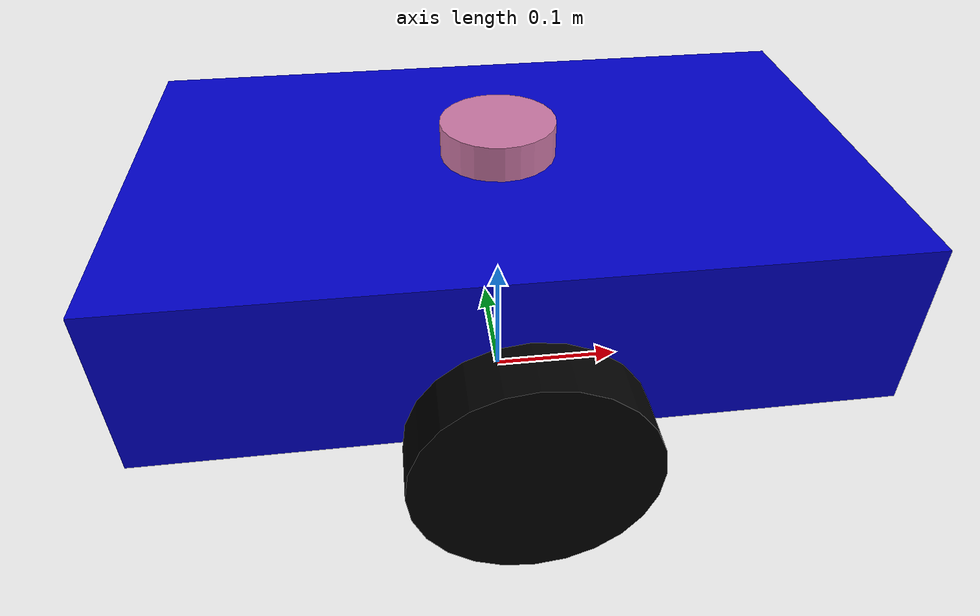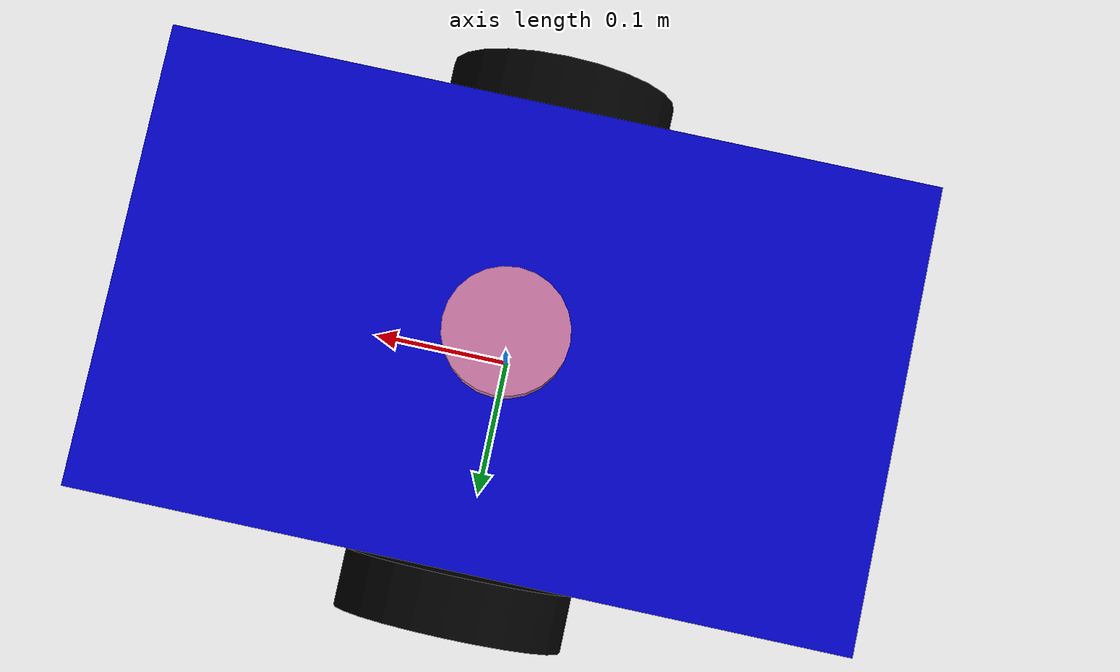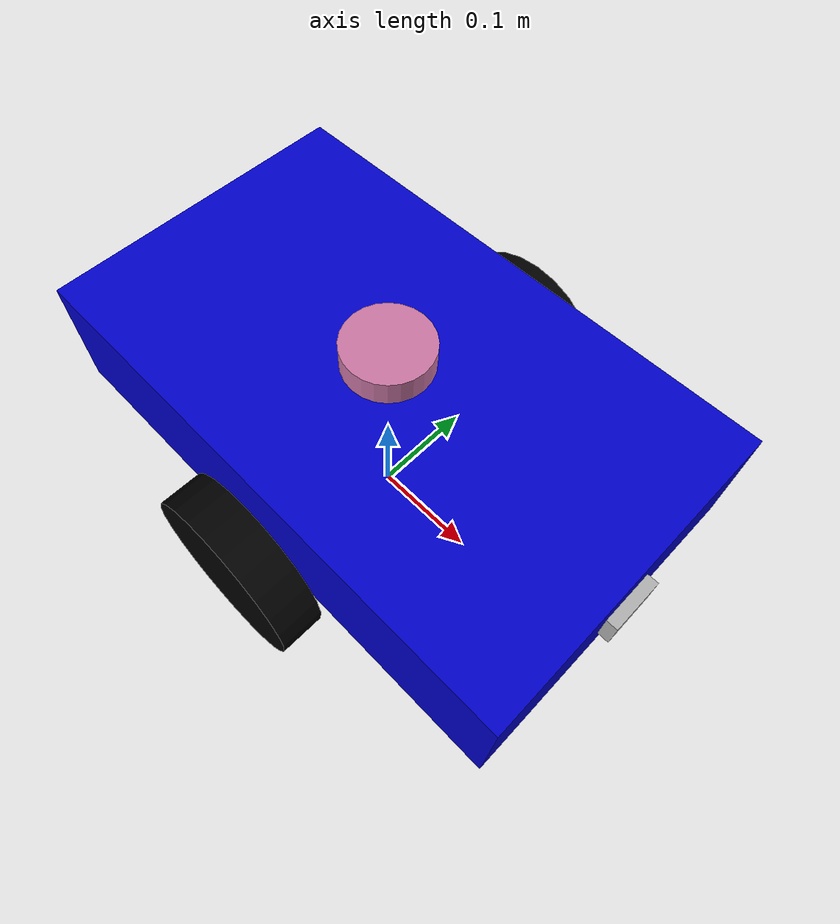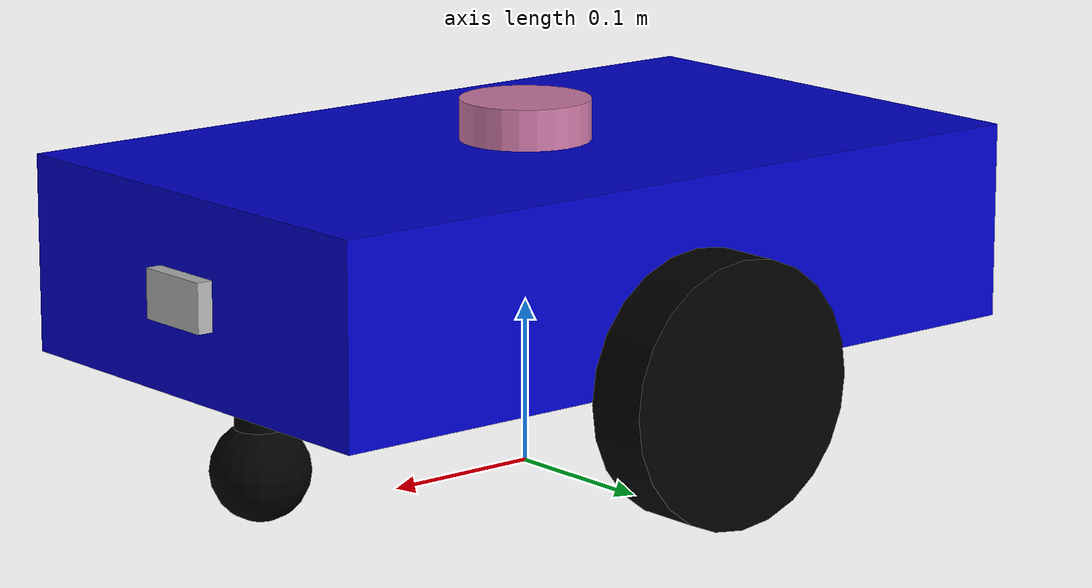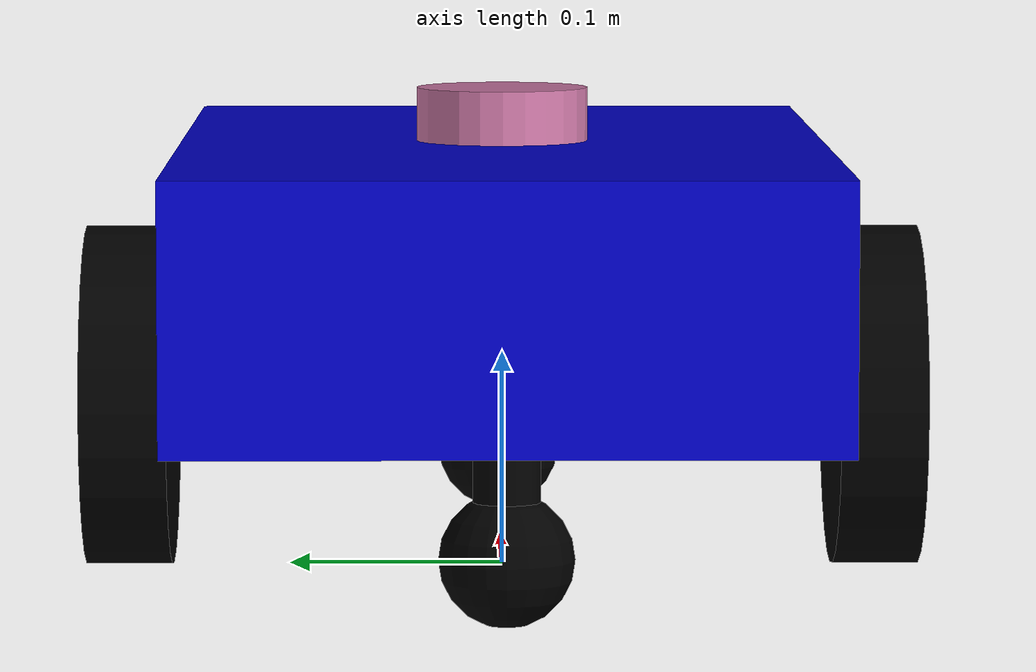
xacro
<?xml version="1.0"?>
<robot xmlns:xacro="http://www.ros.org/wiki/xacro" name="my_robot">

  <xacro:property name="base_length" value="0.50"/>
  <xacro:property name="base_width"  value="0.30"/>
  <xacro:property name="base_height" value="0.12"/>
  <xacro:property name="wheel_radius" value="0.08"/>
  <xacro:property name="wheel_width"  value="0.04"/>
  <xacro:property name="wheel_sep"    value="0.35"/>
  <xacro:property name="caster_radius" value="0.03"/>

  <link name="base_footprint"/>

  <joint name="base_joint" type="fixed">
    <parent link="base_footprint"/>
    <child link="base_link"/>
    <origin xyz="0 0 ${wheel_radius}" rpy="0 0 0"/>
  </joint>

  <link name="base_link">
    <visual>
      <origin xyz="0 0 ${base_height/2}" rpy="0 0 0"/>
      <geometry><box size="${base_length} ${base_width} ${base_height}"/></geometry>
      <material name="blue"><color rgba="0 0 0.8 1"/></material>
    </visual>
    <collision>
      <origin xyz="0 0 ${base_height/2}" rpy="0 0 0"/>
      <geometry><box size="${base_length} ${base_width} ${base_height}"/></geometry>
    </collision>
    <inertial>
      <mass value="5.0"/>
      <inertia ixx="0.04" ixy="0.0" ixz="0.0" iyy="0.1" iyz="0.0" izz="0.1"/>
    </inertial>
  </link>

  <joint name="left_wheel_joint" type="continuous">
    <parent link="base_link"/>
    <child link="left_wheel_link"/>
    <origin xyz="0 ${wheel_sep/2} 0" rpy="-1.5708 0 0"/>
    <axis xyz="0 0 1"/>
  </joint>
  <link name="left_wheel_link">
    <visual><geometry><cylinder radius="${wheel_radius}" length="${wheel_width}"/></geometry><material name="black"><color rgba="0 0 0 1"/></material></visual>
    <collision><geometry><cylinder radius="${wheel_radius}" length="${wheel_width}"/></geometry></collision>
    <inertial><mass value="0.5"/><inertia ixx="0.001" ixy="0" ixz="0" iyy="0.001" iyz="0" izz="0.001"/></inertial>
  </link>

  <joint name="right_wheel_joint" type="continuous">
    <parent link="base_link"/>
    <child link="right_wheel_link"/>
    <origin xyz="0 ${-wheel_sep/2} 0" rpy="-1.5708 0 0"/>
    <axis xyz="0 0 1"/>
  </joint>
  <link name="right_wheel_link">
    <visual><geometry><cylinder radius="${wheel_radius}" length="${wheel_width}"/></geometry><material name="black"/></visual>
    <collision><geometry><cylinder radius="${wheel_radius}" length="${wheel_width}"/></geometry></collision>
    <inertial><mass value="0.5"/><inertia ixx="0.001" ixy="0" ixz="0" iyy="0.001" iyz="0" izz="0.001"/></inertial>
  </link>

  <joint name="front_caster_joint" type="fixed">
    <parent link="base_link"/>
    <child link="front_caster_link"/>
    <origin xyz="${base_length/2 - 0.05} 0 ${caster_radius - wheel_radius}" rpy="0 0 0"/>
  </joint>

  <link name="front_caster_link">
    <visual>
      <origin xyz="0 0 0" rpy="0 0 0"/>
      <geometry>
        <sphere radius="${caster_radius}"/>
      </geometry>
      <material name="black"><color rgba="0 0 0 1"/></material>
    </visual>

    <visual>
      <origin xyz="0 0 ${(wheel_radius - caster_radius) / 2}" rpy="0 0 0"/>
      <geometry>
        <cylinder radius="0.015" length="${wheel_radius - caster_radius}"/>
      </geometry>
      <material name="black"/>
    </visual>

    <collision>
      <origin xyz="0 0 0" rpy="0 0 0"/>
      <geometry>
        <sphere radius="${caster_radius}"/>
      </geometry>
    </collision>
    <inertial>
      <mass value="0.1"/>
      <inertia ixx="0.0001" ixy="0" ixz="0" iyy="0.0001" iyz="0" izz="0.0001"/>
    </inertial>
  </link>

  <joint name="rear_caster_joint" type="fixed">
    <parent link="base_link"/>
    <child link="rear_caster_link"/>
    <origin xyz="${-base_length/2 + 0.05} 0 ${caster_radius - wheel_radius}" rpy="0 0 0"/>
  </joint>

  <link name="rear_caster_link">
    <visual>
      <origin xyz="0 0 0" rpy="0 0 0"/>
      <geometry>
        <sphere radius="${caster_radius}"/>
      </geometry>
      <material name="black"/>
    </visual>

    <visual>
      <origin xyz="0 0 ${(wheel_radius - caster_radius) / 2}" rpy="0 0 0"/>
      <geometry>
        <cylinder radius="0.015" length="${wheel_radius - caster_radius}"/>
      </geometry>
      <material name="black"/>
    </visual>

    <collision>
      <origin xyz="0 0 0" rpy="0 0 0"/>
      <geometry>
        <sphere radius="${caster_radius}"/>
      </geometry>
    </collision>
    <inertial>
      <mass value="0.1"/>
      <inertia ixx="0.0001" ixy="0" ixz="0" iyy="0.0001" iyz="0" izz="0.0001"/>
    </inertial>
  </link>

  <joint name="lidar_joint" type="fixed">
    <parent link="base_link"/>
    <child link="lidar_link"/>
    <origin xyz="0 0 ${base_height}" rpy="0 0 0"/>
  </joint>
  <link name="lidar_link">
    <visual><geometry><cylinder radius="0.04" length="0.05"/></geometry></visual>
  </link>

  <joint name="camera_joint" type="fixed">
    <parent link="base_link"/>
    <child link="camera_link"/>
    <origin xyz="${base_length/2} 0 ${base_height/2}" rpy="0 0 0"/>
  </joint>
  <link name="camera_link">
    <visual><geometry><box size="0.02 0.05 0.03"/></geometry></visual>
  </link>

  <joint name="imu_joint" type="fixed">
    <parent link="base_link"/>
    <child link="imu_link"/>
    <origin xyz="0 0 ${base_height/2}" rpy="0 0 0"/>
  </joint>
  <link name="imu_link"/>

  <gazebo reference="front_caster_link">
    <mu1>0.0</mu1>
    <mu2>0.0</mu2>
  </gazebo>
  <gazebo reference="rear_caster_link">
    <mu1>0.0</mu1>
    <mu2>0.0</mu2>
  </gazebo>

  <ros2_control name="GazeboSystem" type="system">
    <hardware>
      <plugin>gazebo_ros2_control/GazeboSystem</plugin>
    </hardware>
    <joint name="left_wheel_joint">
      <command_interface name="velocity"><param name="min">-10</param><param name="max">10</param></command_interface>
      <state_interface name="position"/>
      <state_interface name="velocity"/>
    </joint>
    <joint name="right_wheel_joint">
      <command_interface name="velocity"><param name="min">-10</param><param name="max">10</param></command_interface>
      <state_interface name="position"/>
      <state_interface name="velocity"/>
    </joint>
  </ros2_control>

  <gazebo>
    <plugin filename="libgazebo_ros2_control.so" name="gazebo_ros2_control">
      <parameters>$(find my_robot)/config/ros2_controllers.yaml</parameters>
    </plugin>
  </gazebo>

  <gazebo reference="lidar_link">
    <sensor type="ray" name="laser">
      <pose>0 0 0 0 0 0</pose>
      <visualize>true</visualize>
      <update_rate>10</update_rate>
      <ray>
        <scan><horizontal><samples>360</samples><resolution>1</resolution><min_angle>-3.14159</min_angle><max_angle>3.14159</max_angle></horizontal></scan>
        <range><min>0.12</min><max>10.0</max><resolution>0.015</resolution></range>
      </ray>
      <plugin name="laser_controller" filename="libgazebo_ros_ray_sensor.so">
        <ros><remapping>~/out:=scan</remapping></ros>
        <output_type>sensor_msgs/LaserScan</output_type>
        <frame_name>lidar_link</frame_name>
      </plugin>
    </sensor>
  </gazebo>

  <gazebo reference="camera_link">
    <sensor type="camera" name="camera">
      <update_rate>30.0</update_rate>
      <camera name="head">
        <horizontal_fov>1.3962634</horizontal_fov>
        <image><width>640</width><height>480</height><format>R8G8B8</format></image>
        <clip><near>0.02</near><far>300</far></clip>
      </camera>
      <plugin name="camera_controller" filename="libgazebo_ros_camera.so">
        <frame_name>camera_link</frame_name>
      </plugin>
    </sensor>
  </gazebo>

  <gazebo reference="imu_link">
    <sensor name="imu_sensor" type="imu">
      <plugin filename="libgazebo_ros_imu_sensor.so" name="imu_plugin">
        <ros><remapping>~/out:=imu</remapping></ros>
        <initial_orientation_as_reference>false</initial_orientation_as_reference>
      </plugin>
      <always_on>true</always_on>
      <update_rate>100</update_rate>
    </sensor>
  </gazebo>

</robot>
